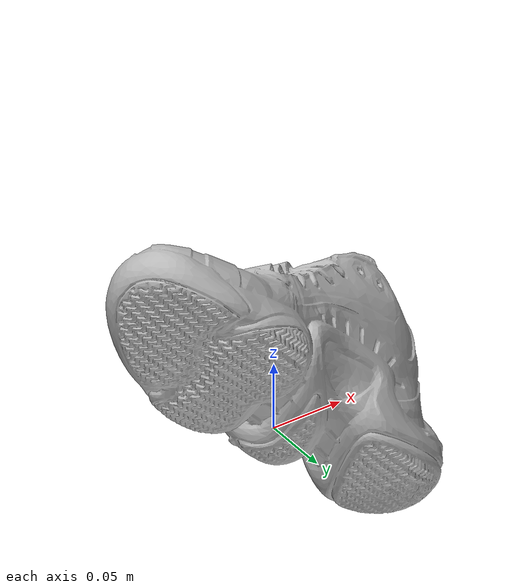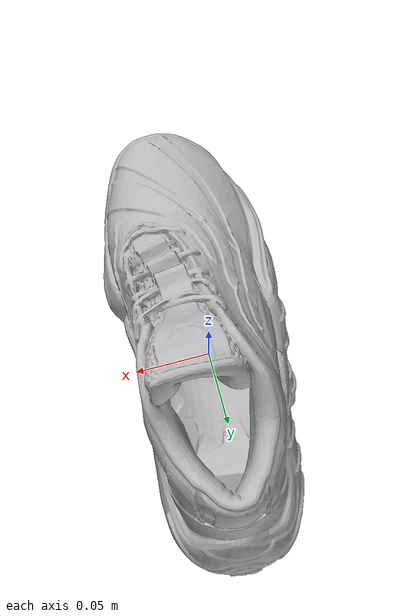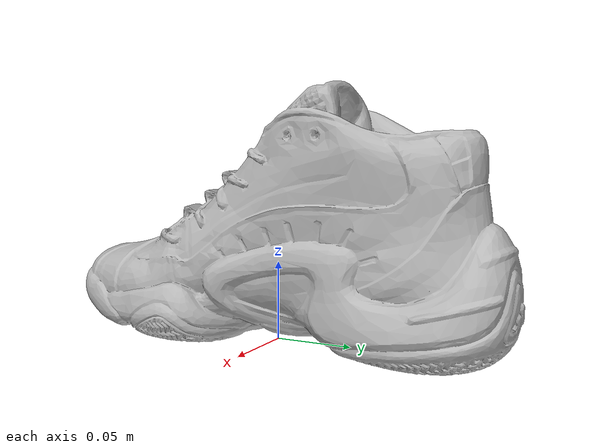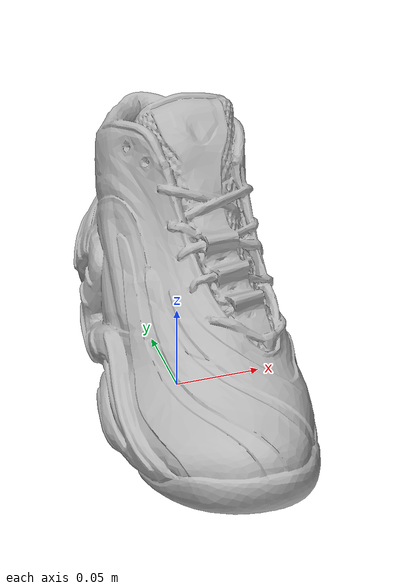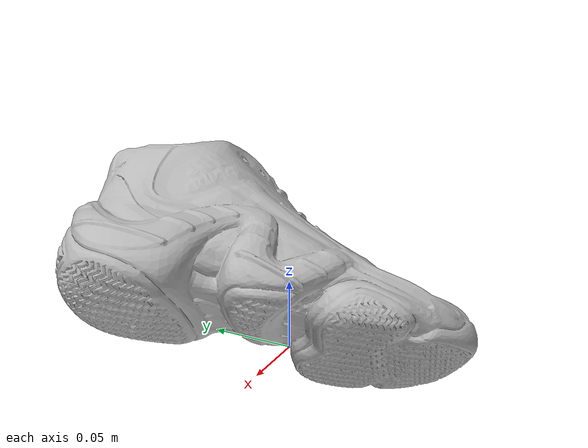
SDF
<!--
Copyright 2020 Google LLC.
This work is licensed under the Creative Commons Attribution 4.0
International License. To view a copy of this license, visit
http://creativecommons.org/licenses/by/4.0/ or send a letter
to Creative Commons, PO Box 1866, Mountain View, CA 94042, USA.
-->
<?xml version="1.0" ?>
<sdf version="1.6">
  <model name="Real_Deal_1nIwCHX1MTh">
    <link name="link_0">
      <visual name="visual">
        <geometry>
          <mesh>
            <uri>meshes/model.obj</uri>
          </mesh>
        </geometry>
      </visual>
      <collision name="collision_0">
        <geometry>
          <mesh>
            <uri>meshes/model.obj</uri>
          </mesh>
        </geometry>
      </collision>
    </link>
  </model>
</sdf>
